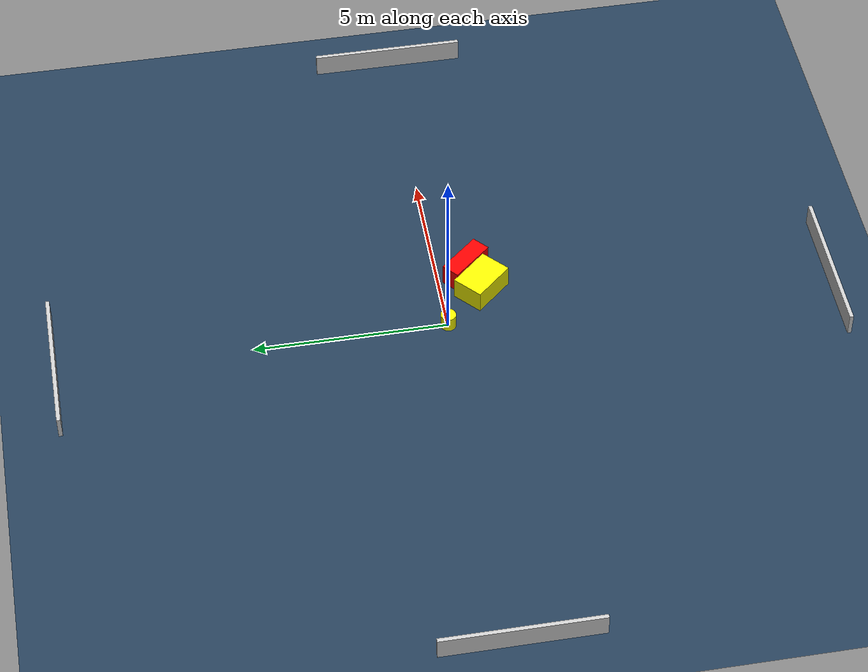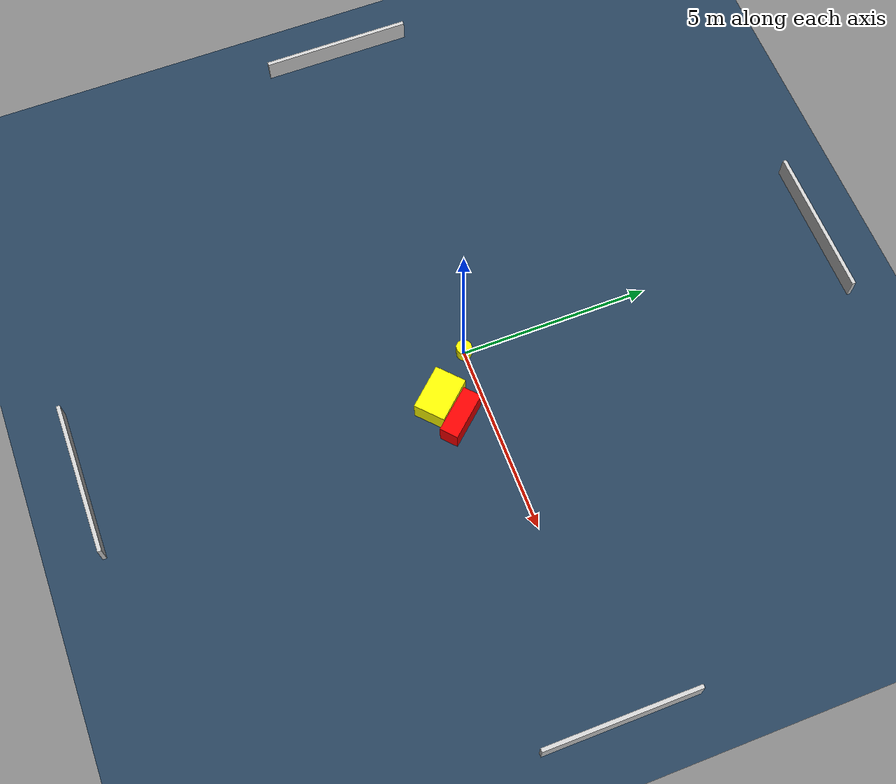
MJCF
<?xml version="1.0" ?>
<mujoco model="generated_environment">
  <option timestep="0.01" integrator="RK4" cone="elliptic"/>
  <default>
    <geom density="1"/>
  </default>
  <asset>
    <texture builtin="gradient" height="3072" name="skybox" rgb1="0.3 0.5 0.7" rgb2="0 0 0" type="skybox" width="512"/>
    <texture builtin="checker" height="300" name="groundplane" rgb1="0.2 0.3 0.4" rgb2="0.1 0.2 0.3" type="2d" width="300"/>
    <material name="groundplane" reflectance="0.2" texrepeat="5 5" texture="groundplane"/>
  </asset>
  <worldbody>
    <light dir="0 0 -1" directional="true" pos="0 0 1.5"/>
    <geom condim="3" friction="0.5 0.005 0.001" material="groundplane" name="floor" pos="0 0 0" size="0 0 0.05" type="plane"/>
    <body name="walls">
      <geom name="wall_1" condim="4" pos="-10.0 0.0 0.3" rgba="0.800000011920929 0.800000011920929 0.800000011920929 1.0" size="0.05 2.0 0.3" type="box"/>
      <geom name="wall_2" condim="4" pos="10.0 0.0 0.3" rgba="0.800000011920929 0.800000011920929 0.800000011920929 1.0" size="0.05 2.0 0.3" type="box"/>
      <geom name="wall_3" condim="4" pos="0.0 -10.0 0.3" rgba="0.800000011920929 0.800000011920929 0.800000011920929 1.0" size="2.0 0.05 0.3" type="box"/>
      <geom name="wall_4" condim="4" pos="0.0 10.0 0.3" rgba="0.800000011920929 0.800000011920929 0.800000011920929 1.0" size="2.0 0.05 0.3" type="box"/>
    </body>
    <body name="robot">
      <joint name="joint_x" type="slide" pos="0 0 0" axis="1 0 0"/>
      <joint name="joint_y" type="slide" pos="0 0 0" axis="0 1 0"/>
      <geom name="robot" type="cylinder" pos="0.0 0.0 0.2" size="0.2 0.2 0.0" mass="5.0" friction="1.0 0.005 0.0001" condim="4" rgba="1.0 1.0 0.0 1.0"/>
    </body>
    <body name="obstacle_1_movable">
      <geom name="obstacle_1_movable" condim="4" pos="1.0619626304795697 -1.0461743636872431 0.3" euler="0 0 222.24062972788687" friction="0.0 0.005 0.001" rgba="1.0 1.0 0.0 1.0" size="0.4178037923989436 0.5986636766292659 0.3" type="box" mass="0.1"/>
      <joint type="free"/>
    </body>
    <body name="obstacle_2_static">
      <geom name="obstacle_2_static" condim="4" pos="1.7284314068294355 -0.7507727762195364 0.3" euler="0 0 221.3852685871641" friction="0.0 0.005 0.001" rgba="1.0 0.0 0.0 1.0" size="0.2440397615660336 0.6359004574040719 0.3" type="box"/>
    </body>
  </worldbody>
  <actuator>
    <motor name="actuator_x" joint="joint_x" gear="1" ctrlrange="-1 1"/>
    <motor name="actuator_y" joint="joint_y" gear="1" ctrlrange="-1 1"/>
  </actuator>
</mujoco>
